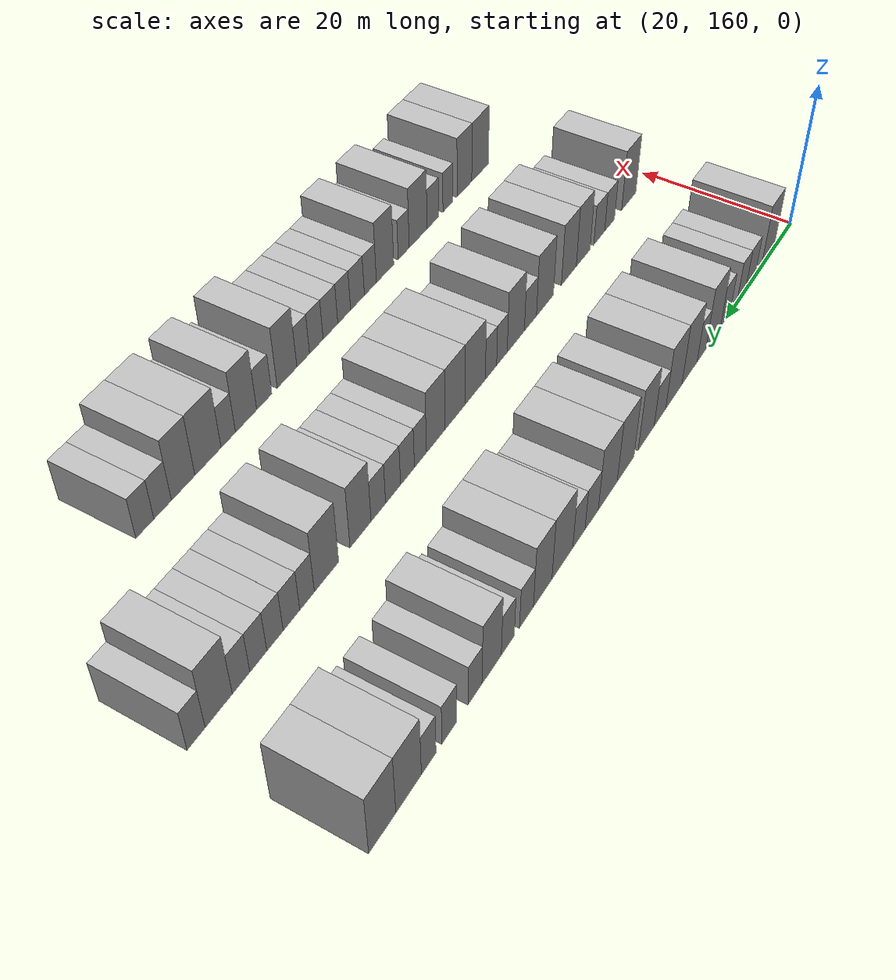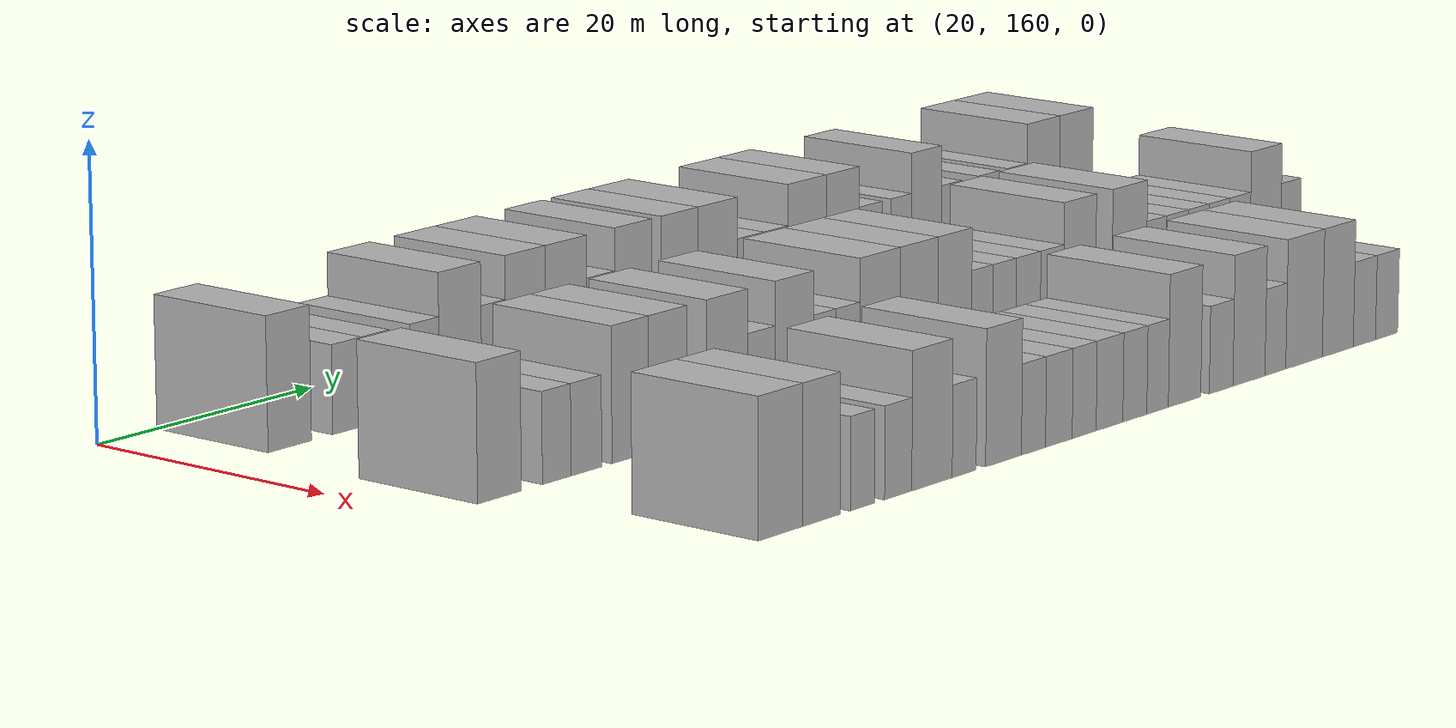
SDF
<sdf version="1.6">
 <world name="default">
  <model name="building_132">
   <static>1</static>
   <pose>25.0000 167.4016 0 0.000000 0.000000 0.000000</pose>
   <link name="link">
    <pose>0 0 4.50 0 0 0</pose>
    <collision name="collision"><geometry><box><size>10.0000 4.0361 9.0000</size></box></geometry></collision>
    <visual name="visual">
     <cast_shadows>0</cast_shadows>
     <geometry><box><size>10.0000 4.0361 9.0000</size></box></geometry>
     <material>
      <script>
       <uri>model://HANNAS_wall/materials/scripts</uri>
       <uri>model://HANNAS_wall/materials/textures</uri>
       <name>vrc/HANNAS_wall</name>
      </script>
     </material>
    </visual>
   </link>
  </model>
  <model name="building_133">
   <static>1</static>
   <pose>25.0000 172.8568 0 0.000000 0.000000 0.000000</pose>
   <link name="link">
    <pose>0 0 3.00 0 0 0</pose>
    <collision name="collision"><geometry><box><size>10.0000 2.8743 6.0000</size></box></geometry></collision>
    <visual name="visual">
     <cast_shadows>0</cast_shadows>
     <geometry><box><size>10.0000 2.8743 6.0000</size></box></geometry>
     <material>
      <script>
       <uri>model://HANNAS_wall/materials/scripts</uri>
       <uri>model://HANNAS_wall/materials/textures</uri>
       <name>vrc/HANNAS_wall</name>
      </script>
     </material>
    </visual>
   </link>
  </model>
  <model name="building_134">
   <static>1</static>
   <pose>25.0000 175.6253 0 0.000000 0.000000 0.000000</pose>
   <link name="link">
    <pose>0 0 3.00 0 0 0</pose>
    <collision name="collision"><geometry><box><size>10.0000 2.6626 6.0000</size></box></geometry></collision>
    <visual name="visual">
     <cast_shadows>0</cast_shadows>
     <geometry><box><size>10.0000 2.6626 6.0000</size></box></geometry>
     <material>
      <script>
       <uri>model://HANNAS_wall/materials/scripts</uri>
       <uri>model://HANNAS_wall/materials/textures</uri>
       <name>vrc/HANNAS_wall</name>
      </script>
     </material>
    </visual>
   </link>
  </model>
  <model name="building_135">
   <static>1</static>
   <pose>25.0000 180.3555 0 0.000000 0.000000 0.000000</pose>
   <link name="link">
    <pose>0 0 3.00 0 0 0</pose>
    <collision name="collision"><geometry><box><size>10.0000 2.7978 6.0000</size></box></geometry></collision>
    <visual name="visual">
     <cast_shadows>0</cast_shadows>
     <geometry><box><size>10.0000 2.7978 6.0000</size></box></geometry>
     <material>
      <script>
       <uri>model://HANNAS_wall/materials/scripts</uri>
       <uri>model://HANNAS_wall/materials/textures</uri>
       <name>vrc/HANNAS_wall</name>
      </script>
     </material>
    </visual>
   </link>
  </model>
  <model name="building_136">
   <static>1</static>
   <pose>25.0000 183.8550 0 0.000000 0.000000 0.000000</pose>
   <link name="link">
    <pose>0 0 4.50 0 0 0</pose>
    <collision name="collision"><geometry><box><size>10.0000 4.2011 9.0000</size></box></geometry></collision>
    <visual name="visual">
     <cast_shadows>0</cast_shadows>
     <geometry><box><size>10.0000 4.2011 9.0000</size></box></geometry>
     <material>
      <script>
       <uri>model://HANNAS_wall/materials/scripts</uri>
       <uri>model://HANNAS_wall/materials/textures</uri>
       <name>vrc/HANNAS_wall</name>
      </script>
     </material>
    </visual>
   </link>
  </model>
  <model name="building_137">
   <static>1</static>
   <pose>25.0000 187.1663 0 0.000000 0.000000 0.000000</pose>
   <link name="link">
    <pose>0 0 3.00 0 0 0</pose>
    <collision name="collision"><geometry><box><size>10.0000 2.4216 6.0000</size></box></geometry></collision>
    <visual name="visual">
     <cast_shadows>0</cast_shadows>
     <geometry><box><size>10.0000 2.4216 6.0000</size></box></geometry>
     <material>
      <script>
       <uri>model://HANNAS_wall/materials/scripts</uri>
       <uri>model://HANNAS_wall/materials/textures</uri>
       <name>vrc/HANNAS_wall</name>
      </script>
     </material>
    </visual>
   </link>
  </model>
  <model name="building_138">
   <static>1</static>
   <pose>25.0000 190.4388 0 0.000000 0.000000 0.000000</pose>
   <link name="link">
    <pose>0 0 4.50 0 0 0</pose>
    <collision name="collision"><geometry><box><size>10.0000 4.1233 9.0000</size></box></geometry></collision>
    <visual name="visual">
     <cast_shadows>0</cast_shadows>
     <geometry><box><size>10.0000 4.1233 9.0000</size></box></geometry>
     <material>
      <script>
       <uri>model://HANNAS_wall/materials/scripts</uri>
       <uri>model://HANNAS_wall/materials/textures</uri>
       <name>vrc/HANNAS_wall</name>
      </script>
     </material>
    </visual>
   </link>
  </model>
  <model name="building_139">
   <static>1</static>
   <pose>25.0000 194.6336 0 0.000000 0.000000 0.000000</pose>
   <link name="link">
    <pose>0 0 4.50 0 0 0</pose>
    <collision name="collision"><geometry><box><size>10.0000 4.2664 9.0000</size></box></geometry></collision>
    <visual name="visual">
     <cast_shadows>0</cast_shadows>
     <geometry><box><size>10.0000 4.2664 9.0000</size></box></geometry>
     <material>
      <script>
       <uri>model://HANNAS_wall/materials/scripts</uri>
       <uri>model://HANNAS_wall/materials/textures</uri>
       <name>vrc/HANNAS_wall</name>
      </script>
     </material>
    </visual>
   </link>
  </model>
  <model name="building_140">
   <static>1</static>
   <pose>25.0000 198.2343 0 0.000000 0.000000 0.000000</pose>
   <link name="link">
    <pose>0 0 3.00 0 0 0</pose>
    <collision name="collision"><geometry><box><size>10.0000 2.9349 6.0000</size></box></geometry></collision>
    <visual name="visual">
     <cast_shadows>0</cast_shadows>
     <geometry><box><size>10.0000 2.9349 6.0000</size></box></geometry>
     <material>
      <script>
       <uri>model://HANNAS_wall/materials/scripts</uri>
       <uri>model://HANNAS_wall/materials/textures</uri>
       <name>vrc/HANNAS_wall</name>
      </script>
     </material>
    </visual>
   </link>
  </model>
  <model name="building_141">
   <static>1</static>
   <pose>25.0000 201.6797 0 0.000000 0.000000 0.000000</pose>
   <link name="link">
    <pose>0 0 4.50 0 0 0</pose>
    <collision name="collision"><geometry><box><size>10.0000 3.9559 9.0000</size></box></geometry></collision>
    <visual name="visual">
     <cast_shadows>0</cast_shadows>
     <geometry><box><size>10.0000 3.9559 9.0000</size></box></geometry>
     <material>
      <script>
       <uri>model://HANNAS_wall/materials/scripts</uri>
       <uri>model://HANNAS_wall/materials/textures</uri>
       <name>vrc/HANNAS_wall</name>
      </script>
     </material>
    </visual>
   </link>
  </model>
  <model name="building_142">
   <static>1</static>
   <pose>25.0000 206.6580 0 0.000000 0.000000 0.000000</pose>
   <link name="link">
    <pose>0 0 4.50 0 0 0</pose>
    <collision name="collision"><geometry><box><size>10.0000 4.0008 9.0000</size></box></geometry></collision>
    <visual name="visual">
     <cast_shadows>0</cast_shadows>
     <geometry><box><size>10.0000 4.0008 9.0000</size></box></geometry>
     <material>
      <script>
       <uri>model://HANNAS_wall/materials/scripts</uri>
       <uri>model://HANNAS_wall/materials/textures</uri>
       <name>vrc/HANNAS_wall</name>
      </script>
     </material>
    </visual>
   </link>
  </model>
  <model name="building_143">
   <static>1</static>
   <pose>25.0000 210.8359 0 0.000000 0.000000 0.000000</pose>
   <link name="link">
    <pose>0 0 4.50 0 0 0</pose>
    <collision name="collision"><geometry><box><size>10.0000 4.3551 9.0000</size></box></geometry></collision>
    <visual name="visual">
     <cast_shadows>0</cast_shadows>
     <geometry><box><size>10.0000 4.3551 9.0000</size></box></geometry>
     <material>
      <script>
       <uri>model://HANNAS_wall/materials/scripts</uri>
       <uri>model://HANNAS_wall/materials/textures</uri>
       <name>vrc/HANNAS_wall</name>
      </script>
     </material>
    </visual>
   </link>
  </model>
  <model name="building_144">
   <static>1</static>
   <pose>25.0000 214.5056 0 0.000000 0.000000 0.000000</pose>
   <link name="link">
    <pose>0 0 3.00 0 0 0</pose>
    <collision name="collision"><geometry><box><size>10.0000 2.9843 6.0000</size></box></geometry></collision>
    <visual name="visual">
     <cast_shadows>0</cast_shadows>
     <geometry><box><size>10.0000 2.9843 6.0000</size></box></geometry>
     <material>
      <script>
       <uri>model://HANNAS_wall/materials/scripts</uri>
       <uri>model://HANNAS_wall/materials/textures</uri>
       <name>vrc/HANNAS_wall</name>
      </script>
     </material>
    </visual>
   </link>
  </model>
  <model name="building_145">
   <static>1</static>
   <pose>25.0000 217.3290 0 0.000000 0.000000 0.000000</pose>
   <link name="link">
    <pose>0 0 3.00 0 0 0</pose>
    <collision name="collision"><geometry><box><size>10.0000 2.6625 6.0000</size></box></geometry></collision>
    <visual name="visual">
     <cast_shadows>0</cast_shadows>
     <geometry><box><size>10.0000 2.6625 6.0000</size></box></geometry>
     <material>
      <script>
       <uri>model://HANNAS_wall/materials/scripts</uri>
       <uri>model://HANNAS_wall/materials/textures</uri>
       <name>vrc/HANNAS_wall</name>
      </script>
     </material>
    </visual>
   </link>
  </model>
  <model name="building_146">
   <static>1</static>
   <pose>25.0000 220.8657 0 0.000000 0.000000 0.000000</pose>
   <link name="link">
    <pose>0 0 4.50 0 0 0</pose>
    <collision name="collision"><geometry><box><size>10.0000 4.4109 9.0000</size></box></geometry></collision>
    <visual name="visual">
     <cast_shadows>0</cast_shadows>
     <geometry><box><size>10.0000 4.4109 9.0000</size></box></geometry>
     <material>
      <script>
       <uri>model://HANNAS_wall/materials/scripts</uri>
       <uri>model://HANNAS_wall/materials/textures</uri>
       <name>vrc/HANNAS_wall</name>
      </script>
     </material>
    </visual>
   </link>
  </model>
  <model name="building_147">
   <static>1</static>
   <pose>25.0000 224.9653 0 0.000000 0.000000 0.000000</pose>
   <link name="link">
    <pose>0 0 4.50 0 0 0</pose>
    <collision name="collision"><geometry><box><size>10.0000 3.7883 9.0000</size></box></geometry></collision>
    <visual name="visual">
     <cast_shadows>0</cast_shadows>
     <geometry><box><size>10.0000 3.7883 9.0000</size></box></geometry>
     <material>
      <script>
       <uri>model://HANNAS_wall/materials/scripts</uri>
       <uri>model://HANNAS_wall/materials/textures</uri>
       <name>vrc/HANNAS_wall</name>
      </script>
     </material>
    </visual>
   </link>
  </model>
  <model name="building_148">
   <static>1</static>
   <pose>25.0000 228.2451 0 0.000000 0.000000 0.000000</pose>
   <link name="link">
    <pose>0 0 3.00 0 0 0</pose>
    <collision name="collision"><geometry><box><size>10.0000 2.7714 6.0000</size></box></geometry></collision>
    <visual name="visual">
     <cast_shadows>0</cast_shadows>
     <geometry><box><size>10.0000 2.7714 6.0000</size></box></geometry>
     <material>
      <script>
       <uri>model://HANNAS_wall/materials/scripts</uri>
       <uri>model://HANNAS_wall/materials/textures</uri>
       <name>vrc/HANNAS_wall</name>
      </script>
     </material>
    </visual>
   </link>
  </model>
  <model name="building_149">
   <static>1</static>
   <pose>25.0000 231.8796 0 0.000000 0.000000 0.000000</pose>
   <link name="link">
    <pose>0 0 3.00 0 0 0</pose>
    <collision name="collision"><geometry><box><size>10.0000 2.4976 6.0000</size></box></geometry></collision>
    <visual name="visual">
     <cast_shadows>0</cast_shadows>
     <geometry><box><size>10.0000 2.4976 6.0000</size></box></geometry>
     <material>
      <script>
       <uri>model://HANNAS_wall/materials/scripts</uri>
       <uri>model://HANNAS_wall/materials/textures</uri>
       <name>vrc/HANNAS_wall</name>
      </script>
     </material>
    </visual>
   </link>
  </model>
  <model name="building_150">
   <static>1</static>
   <pose>25.0000 234.9366 0 0.000000 0.000000 0.000000</pose>
   <link name="link">
    <pose>0 0 4.50 0 0 0</pose>
    <collision name="collision"><geometry><box><size>10.0000 3.6164 9.0000</size></box></geometry></collision>
    <visual name="visual">
     <cast_shadows>0</cast_shadows>
     <geometry><box><size>10.0000 3.6164 9.0000</size></box></geometry>
     <material>
      <script>
       <uri>model://HANNAS_wall/materials/scripts</uri>
       <uri>model://HANNAS_wall/materials/textures</uri>
       <name>vrc/HANNAS_wall</name>
      </script>
     </material>
    </visual>
   </link>
  </model>
  <model name="building_151">
   <static>1</static>
   <pose>25.0000 237.9930 0 0.000000 0.000000 0.000000</pose>
   <link name="link">
    <pose>0 0 3.00 0 0 0</pose>
    <collision name="collision"><geometry><box><size>10.0000 2.4963 6.0000</size></box></geometry></collision>
    <visual name="visual">
     <cast_shadows>0</cast_shadows>
     <geometry><box><size>10.0000 2.4963 6.0000</size></box></geometry>
     <material>
      <script>
       <uri>model://HANNAS_wall/materials/scripts</uri>
       <uri>model://HANNAS_wall/materials/textures</uri>
       <name>vrc/HANNAS_wall</name>
      </script>
     </material>
    </visual>
   </link>
  </model>
  <model name="building_152">
   <static>1</static>
   <pose>25.0000 242.5551 0 0.000000 0.000000 0.000000</pose>
   <link name="link">
    <pose>0 0 3.00 0 0 0</pose>
    <collision name="collision"><geometry><box><size>10.0000 2.6278 6.0000</size></box></geometry></collision>
    <visual name="visual">
     <cast_shadows>0</cast_shadows>
     <geometry><box><size>10.0000 2.6278 6.0000</size></box></geometry>
     <material>
      <script>
       <uri>model://HANNAS_wall/materials/scripts</uri>
       <uri>model://HANNAS_wall/materials/textures</uri>
       <name>vrc/HANNAS_wall</name>
      </script>
     </material>
    </visual>
   </link>
  </model>
  <model name="building_153">
   <static>1</static>
   <pose>25.0000 246.0981 0 0.000000 0.000000 0.000000</pose>
   <link name="link">
    <pose>0 0 3.00 0 0 0</pose>
    <collision name="collision"><geometry><box><size>10.0000 2.4583 6.0000</size></box></geometry></collision>
    <visual name="visual">
     <cast_shadows>0</cast_shadows>
     <geometry><box><size>10.0000 2.4583 6.0000</size></box></geometry>
     <material>
      <script>
       <uri>model://HANNAS_wall/materials/scripts</uri>
       <uri>model://HANNAS_wall/materials/textures</uri>
       <name>vrc/HANNAS_wall</name>
      </script>
     </material>
    </visual>
   </link>
  </model>
  <model name="building_154">
   <static>1</static>
   <pose>25.0000 249.4092 0 0.000000 0.000000 0.000000</pose>
   <link name="link">
    <pose>0 0 4.50 0 0 0</pose>
    <collision name="collision"><geometry><box><size>10.0000 4.1639 9.0000</size></box></geometry></collision>
    <visual name="visual">
     <cast_shadows>0</cast_shadows>
     <geometry><box><size>10.0000 4.1639 9.0000</size></box></geometry>
     <material>
      <script>
       <uri>model://HANNAS_wall/materials/scripts</uri>
       <uri>model://HANNAS_wall/materials/textures</uri>
       <name>vrc/HANNAS_wall</name>
      </script>
     </material>
    </visual>
   </link>
  </model>
  <model name="building_155">
   <static>1</static>
   <pose>25.0000 253.6207 0 0.000000 0.000000 0.000000</pose>
   <link name="link">
    <pose>0 0 4.50 0 0 0</pose>
    <collision name="collision"><geometry><box><size>10.0000 4.2589 9.0000</size></box></geometry></collision>
    <visual name="visual">
     <cast_shadows>0</cast_shadows>
     <geometry><box><size>10.0000 4.2589 9.0000</size></box></geometry>
     <material>
      <script>
       <uri>model://HANNAS_wall/materials/scripts</uri>
       <uri>model://HANNAS_wall/materials/textures</uri>
       <name>vrc/HANNAS_wall</name>
      </script>
     </material>
    </visual>
   </link>
  </model>
  <model name="building_297">
   <static>1</static>
   <pose>44.0000 166.2717 0 0.000000 0.000000 0.000000</pose>
   <link name="link">
    <pose>0 0 4.50 0 0 0</pose>
    <collision name="collision"><geometry><box><size>10.0000 4.1031 9.0000</size></box></geometry></collision>
    <visual name="visual">
     <cast_shadows>0</cast_shadows>
     <geometry><box><size>10.0000 4.1031 9.0000</size></box></geometry>
     <material>
      <script>
       <uri>model://HANNAS_wall/materials/scripts</uri>
       <uri>model://HANNAS_wall/materials/textures</uri>
       <name>vrc/HANNAS_wall</name>
      </script>
     </material>
    </visual>
   </link>
  </model>
  <model name="building_298">
   <static>1</static>
   <pose>44.0000 171.6973 0 0.000000 0.000000 0.000000</pose>
   <link name="link">
    <pose>0 0 3.00 0 0 0</pose>
    <collision name="collision"><geometry><box><size>10.0000 2.7482 6.0000</size></box></geometry></collision>
    <visual name="visual">
     <cast_shadows>0</cast_shadows>
     <geometry><box><size>10.0000 2.7482 6.0000</size></box></geometry>
     <material>
      <script>
       <uri>model://HANNAS_wall/materials/scripts</uri>
       <uri>model://HANNAS_wall/materials/textures</uri>
       <name>vrc/HANNAS_wall</name>
      </script>
     </material>
    </visual>
   </link>
  </model>
  <model name="building_299">
   <static>1</static>
   <pose>44.0000 174.5590 0 0.000000 0.000000 0.000000</pose>
   <link name="link">
    <pose>0 0 3.00 0 0 0</pose>
    <collision name="collision"><geometry><box><size>10.0000 2.9753 6.0000</size></box></geometry></collision>
    <visual name="visual">
     <cast_shadows>0</cast_shadows>
     <geometry><box><size>10.0000 2.9753 6.0000</size></box></geometry>
     <material>
      <script>
       <uri>model://HANNAS_wall/materials/scripts</uri>
       <uri>model://HANNAS_wall/materials/textures</uri>
       <name>vrc/HANNAS_wall</name>
      </script>
     </material>
    </visual>
   </link>
  </model>
  <model name="building_300">
   <static>1</static>
   <pose>44.0000 178.8751 0 0.000000 0.000000 0.000000</pose>
   <link name="link">
    <pose>0 0 4.50 0 0 0</pose>
    <collision name="collision"><geometry><box><size>10.0000 3.6570 9.0000</size></box></geometry></collision>
    <visual name="visual">
     <cast_shadows>0</cast_shadows>
     <geometry><box><size>10.0000 3.6570 9.0000</size></box></geometry>
     <material>
      <script>
       <uri>model://HANNAS_wall/materials/scripts</uri>
       <uri>model://HANNAS_wall/materials/textures</uri>
       <name>vrc/HANNAS_wall</name>
      </script>
     </material>
    </visual>
   </link>
  </model>
  <model name="building_301">
   <static>1</static>
   <pose>44.0000 182.6190 0 0.000000 0.000000 0.000000</pose>
   <link name="link">
    <pose>0 0 4.50 0 0 0</pose>
    <collision name="collision"><geometry><box><size>10.0000 3.8307 9.0000</size></box></geometry></collision>
    <visual name="visual">
     <cast_shadows>0</cast_shadows>
     <geometry><box><size>10.0000 3.8307 9.0000</size></box></geometry>
     <material>
      <script>
       <uri>model://HANNAS_wall/materials/scripts</uri>
       <uri>model://HANNAS_wall/materials/textures</uri>
       <name>vrc/HANNAS_wall</name>
      </script>
     </material>
    </visual>
   </link>
  </model>
  <model name="building_302">
   <static>1</static>
   <pose>44.0000 188.6394 0 0.000000 0.000000 0.000000</pose>
   <link name="link">
    <pose>0 0 4.50 0 0 0</pose>
    <collision name="collision"><geometry><box><size>10.0000 4.2102 9.0000</size></box></geometry></collision>
    <visual name="visual">
     <cast_shadows>0</cast_shadows>
     <geometry><box><size>10.0000 4.2102 9.0000</size></box></geometry>
     <material>
      <script>
       <uri>model://HANNAS_wall/materials/scripts</uri>
       <uri>model://HANNAS_wall/materials/textures</uri>
       <name>vrc/HANNAS_wall</name>
      </script>
     </material>
    </visual>
   </link>
  </model>
  <model name="building_303">
   <static>1</static>
   <pose>44.0000 192.1918 0 0.000000 0.000000 0.000000</pose>
   <link name="link">
    <pose>0 0 3.00 0 0 0</pose>
    <collision name="collision"><geometry><box><size>10.0000 2.8946 6.0000</size></box></geometry></collision>
    <visual name="visual">
     <cast_shadows>0</cast_shadows>
     <geometry><box><size>10.0000 2.8946 6.0000</size></box></geometry>
     <material>
      <script>
       <uri>model://HANNAS_wall/materials/scripts</uri>
       <uri>model://HANNAS_wall/materials/textures</uri>
       <name>vrc/HANNAS_wall</name>
      </script>
     </material>
    </visual>
   </link>
  </model>
  <model name="building_304">
   <static>1</static>
   <pose>44.0000 195.6541 0 0.000000 0.000000 0.000000</pose>
   <link name="link">
    <pose>0 0 4.50 0 0 0</pose>
    <collision name="collision"><geometry><box><size>10.0000 4.0300 9.0000</size></box></geometry></collision>
    <visual name="visual">
     <cast_shadows>0</cast_shadows>
     <geometry><box><size>10.0000 4.0300 9.0000</size></box></geometry>
     <material>
      <script>
       <uri>model://HANNAS_wall/materials/scripts</uri>
       <uri>model://HANNAS_wall/materials/textures</uri>
       <name>vrc/HANNAS_wall</name>
      </script>
     </material>
    </visual>
   </link>
  </model>
  <model name="building_305">
   <static>1</static>
   <pose>44.0000 198.8816 0 0.000000 0.000000 0.000000</pose>
   <link name="link">
    <pose>0 0 3.00 0 0 0</pose>
    <collision name="collision"><geometry><box><size>10.0000 2.4249 6.0000</size></box></geometry></collision>
    <visual name="visual">
     <cast_shadows>0</cast_shadows>
     <geometry><box><size>10.0000 2.4249 6.0000</size></box></geometry>
     <material>
      <script>
       <uri>model://HANNAS_wall/materials/scripts</uri>
       <uri>model://HANNAS_wall/materials/textures</uri>
       <name>vrc/HANNAS_wall</name>
      </script>
     </material>
    </visual>
   </link>
  </model>
  <model name="building_306">
   <static>1</static>
   <pose>44.0000 201.3626 0 0.000000 0.000000 0.000000</pose>
   <link name="link">
    <pose>0 0 3.00 0 0 0</pose>
    <collision name="collision"><geometry><box><size>10.0000 2.5373 6.0000</size></box></geometry></collision>
    <visual name="visual">
     <cast_shadows>0</cast_shadows>
     <geometry><box><size>10.0000 2.5373 6.0000</size></box></geometry>
     <material>
      <script>
       <uri>model://HANNAS_wall/materials/scripts</uri>
       <uri>model://HANNAS_wall/materials/textures</uri>
       <name>vrc/HANNAS_wall</name>
      </script>
     </material>
    </visual>
   </link>
  </model>
  <model name="building_307">
   <static>1</static>
   <pose>44.0000 204.8382 0 0.000000 0.000000 0.000000</pose>
   <link name="link">
    <pose>0 0 4.50 0 0 0</pose>
    <collision name="collision"><geometry><box><size>10.0000 4.4139 9.0000</size></box></geometry></collision>
    <visual name="visual">
     <cast_shadows>0</cast_shadows>
     <geometry><box><size>10.0000 4.4139 9.0000</size></box></geometry>
     <material>
      <script>
       <uri>model://HANNAS_wall/materials/scripts</uri>
       <uri>model://HANNAS_wall/materials/textures</uri>
       <name>vrc/HANNAS_wall</name>
      </script>
     </material>
    </visual>
   </link>
  </model>
  <model name="building_308">
   <static>1</static>
   <pose>44.0000 209.1703 0 0.000000 0.000000 0.000000</pose>
   <link name="link">
    <pose>0 0 4.50 0 0 0</pose>
    <collision name="collision"><geometry><box><size>10.0000 4.2503 9.0000</size></box></geometry></collision>
    <visual name="visual">
     <cast_shadows>0</cast_shadows>
     <geometry><box><size>10.0000 4.2503 9.0000</size></box></geometry>
     <material>
      <script>
       <uri>model://HANNAS_wall/materials/scripts</uri>
       <uri>model://HANNAS_wall/materials/textures</uri>
       <name>vrc/HANNAS_wall</name>
      </script>
     </material>
    </visual>
   </link>
  </model>
  <model name="building_309">
   <static>1</static>
   <pose>44.0000 213.2026 0 0.000000 0.000000 0.000000</pose>
   <link name="link">
    <pose>0 0 4.50 0 0 0</pose>
    <collision name="collision"><geometry><box><size>10.0000 3.8143 9.0000</size></box></geometry></collision>
    <visual name="visual">
     <cast_shadows>0</cast_shadows>
     <geometry><box><size>10.0000 3.8143 9.0000</size></box></geometry>
     <material>
      <script>
       <uri>model://HANNAS_wall/materials/scripts</uri>
       <uri>model://HANNAS_wall/materials/textures</uri>
       <name>vrc/HANNAS_wall</name>
      </script>
     </material>
    </visual>
   </link>
  </model>
  <model name="building_310">
   <static>1</static>
   <pose>44.0000 216.3198 0 0.000000 0.000000 0.000000</pose>
   <link name="link">
    <pose>0 0 3.00 0 0 0</pose>
    <collision name="collision"><geometry><box><size>10.0000 2.4201 6.0000</size></box></geometry></collision>
    <visual name="visual">
     <cast_shadows>0</cast_shadows>
     <geometry><box><size>10.0000 2.4201 6.0000</size></box></geometry>
     <material>
      <script>
       <uri>model://HANNAS_wall/materials/scripts</uri>
       <uri>model://HANNAS_wall/materials/textures</uri>
       <name>vrc/HANNAS_wall</name>
      </script>
     </material>
    </visual>
   </link>
  </model>
  <model name="building_311">
   <static>1</static>
   <pose>44.0000 218.8859 0 0.000000 0.000000 0.000000</pose>
   <link name="link">
    <pose>0 0 3.00 0 0 0</pose>
    <collision name="collision"><geometry><box><size>10.0000 2.7121 6.0000</size></box></geometry></collision>
    <visual name="visual">
     <cast_shadows>0</cast_shadows>
     <geometry><box><size>10.0000 2.7121 6.0000</size></box></geometry>
     <material>
      <script>
       <uri>model://HANNAS_wall/materials/scripts</uri>
       <uri>model://HANNAS_wall/materials/textures</uri>
       <name>vrc/HANNAS_wall</name>
      </script>
     </material>
    </visual>
   </link>
  </model>
  <model name="building_312">
   <static>1</static>
   <pose>44.0000 221.6745 0 0.000000 0.000000 0.000000</pose>
   <link name="link">
    <pose>0 0 3.00 0 0 0</pose>
    <collision name="collision"><geometry><box><size>10.0000 2.8652 6.0000</size></box></geometry></collision>
    <visual name="visual">
     <cast_shadows>0</cast_shadows>
     <geometry><box><size>10.0000 2.8652 6.0000</size></box></geometry>
     <material>
      <script>
       <uri>model://HANNAS_wall/materials/scripts</uri>
       <uri>model://HANNAS_wall/materials/textures</uri>
       <name>vrc/HANNAS_wall</name>
      </script>
     </material>
    </visual>
   </link>
  </model>
  <model name="building_313">
   <static>1</static>
   <pose>44.0000 224.4675 0 0.000000 0.000000 0.000000</pose>
   <link name="link">
    <pose>0 0 3.00 0 0 0</pose>
    <collision name="collision"><geometry><box><size>10.0000 2.7208 6.0000</size></box></geometry></collision>
    <visual name="visual">
     <cast_shadows>0</cast_shadows>
     <geometry><box><size>10.0000 2.7208 6.0000</size></box></geometry>
     <material>
      <script>
       <uri>model://HANNAS_wall/materials/scripts</uri>
       <uri>model://HANNAS_wall/materials/textures</uri>
       <name>vrc/HANNAS_wall</name>
      </script>
     </material>
    </visual>
   </link>
  </model>
  <model name="building_314">
   <static>1</static>
   <pose>44.0000 227.7508 0 0.000000 0.000000 0.000000</pose>
   <link name="link">
    <pose>0 0 4.50 0 0 0</pose>
    <collision name="collision"><geometry><box><size>10.0000 3.8458 9.0000</size></box></geometry></collision>
    <visual name="visual">
     <cast_shadows>0</cast_shadows>
     <geometry><box><size>10.0000 3.8458 9.0000</size></box></geometry>
     <material>
      <script>
       <uri>model://HANNAS_wall/materials/scripts</uri>
       <uri>model://HANNAS_wall/materials/textures</uri>
       <name>vrc/HANNAS_wall</name>
      </script>
     </material>
    </visual>
   </link>
  </model>
  <model name="building_315">
   <static>1</static>
   <pose>44.0000 233.7811 0 0.000000 0.000000 0.000000</pose>
   <link name="link">
    <pose>0 0 4.50 0 0 0</pose>
    <collision name="collision"><geometry><box><size>10.0000 4.2148 9.0000</size></box></geometry></collision>
    <visual name="visual">
     <cast_shadows>0</cast_shadows>
     <geometry><box><size>10.0000 4.2148 9.0000</size></box></geometry>
     <material>
      <script>
       <uri>model://HANNAS_wall/materials/scripts</uri>
       <uri>model://HANNAS_wall/materials/textures</uri>
       <name>vrc/HANNAS_wall</name>
      </script>
     </material>
    </visual>
   </link>
  </model>
  <model name="building_316">
   <static>1</static>
   <pose>44.0000 237.1164 0 0.000000 0.000000 0.000000</pose>
   <link name="link">
    <pose>0 0 3.00 0 0 0</pose>
    <collision name="collision"><geometry><box><size>10.0000 2.4559 6.0000</size></box></geometry></collision>
    <visual name="visual">
     <cast_shadows>0</cast_shadows>
     <geometry><box><size>10.0000 2.4559 6.0000</size></box></geometry>
     <material>
      <script>
       <uri>model://HANNAS_wall/materials/scripts</uri>
       <uri>model://HANNAS_wall/materials/textures</uri>
       <name>vrc/HANNAS_wall</name>
      </script>
     </material>
    </visual>
   </link>
  </model>
  <model name="building_317">
   <static>1</static>
   <pose>44.0000 239.7069 0 0.000000 0.000000 0.000000</pose>
   <link name="link">
    <pose>0 0 3.00 0 0 0</pose>
    <collision name="collision"><geometry><box><size>10.0000 2.7252 6.0000</size></box></geometry></collision>
    <visual name="visual">
     <cast_shadows>0</cast_shadows>
     <geometry><box><size>10.0000 2.7252 6.0000</size></box></geometry>
     <material>
      <script>
       <uri>model://HANNAS_wall/materials/scripts</uri>
       <uri>model://HANNAS_wall/materials/textures</uri>
       <name>vrc/HANNAS_wall</name>
      </script>
     </material>
    </visual>
   </link>
  </model>
  <model name="building_318">
   <static>1</static>
   <pose>44.0000 242.3762 0 0.000000 0.000000 0.000000</pose>
   <link name="link">
    <pose>0 0 3.00 0 0 0</pose>
    <collision name="collision"><geometry><box><size>10.0000 2.6133 6.0000</size></box></geometry></collision>
    <visual name="visual">
     <cast_shadows>0</cast_shadows>
     <geometry><box><size>10.0000 2.6133 6.0000</size></box></geometry>
     <material>
      <script>
       <uri>model://HANNAS_wall/materials/scripts</uri>
       <uri>model://HANNAS_wall/materials/textures</uri>
       <name>vrc/HANNAS_wall</name>
      </script>
     </material>
    </visual>
   </link>
  </model>
  <model name="building_319">
   <static>1</static>
   <pose>44.0000 245.0153 0 0.000000 0.000000 0.000000</pose>
   <link name="link">
    <pose>0 0 3.00 0 0 0</pose>
    <collision name="collision"><geometry><box><size>10.0000 2.6649 6.0000</size></box></geometry></collision>
    <visual name="visual">
     <cast_shadows>0</cast_shadows>
     <geometry><box><size>10.0000 2.6649 6.0000</size></box></geometry>
     <material>
      <script>
       <uri>model://HANNAS_wall/materials/scripts</uri>
       <uri>model://HANNAS_wall/materials/textures</uri>
       <name>vrc/HANNAS_wall</name>
      </script>
     </material>
    </visual>
   </link>
  </model>
  <model name="building_320">
   <static>1</static>
   <pose>44.0000 247.6917 0 0.000000 0.000000 0.000000</pose>
   <link name="link">
    <pose>0 0 3.00 0 0 0</pose>
    <collision name="collision"><geometry><box><size>10.0000 2.6880 6.0000</size></box></geometry></collision>
    <visual name="visual">
     <cast_shadows>0</cast_shadows>
     <geometry><box><size>10.0000 2.6880 6.0000</size></box></geometry>
     <material>
      <script>
       <uri>model://HANNAS_wall/materials/scripts</uri>
       <uri>model://HANNAS_wall/materials/textures</uri>
       <name>vrc/HANNAS_wall</name>
      </script>
     </material>
    </visual>
   </link>
  </model>
  <model name="building_321">
   <static>1</static>
   <pose>44.0000 251.0475 0 0.000000 0.000000 0.000000</pose>
   <link name="link">
    <pose>0 0 4.50 0 0 0</pose>
    <collision name="collision"><geometry><box><size>10.0000 4.0236 9.0000</size></box></geometry></collision>
    <visual name="visual">
     <cast_shadows>0</cast_shadows>
     <geometry><box><size>10.0000 4.0236 9.0000</size></box></geometry>
     <material>
      <script>
       <uri>model://HANNAS_wall/materials/scripts</uri>
       <uri>model://HANNAS_wall/materials/textures</uri>
       <name>vrc/HANNAS_wall</name>
      </script>
     </material>
    </visual>
   </link>
  </model>
  <model name="building_322">
   <static>1</static>
   <pose>44.0000 254.3635 0 0.000000 0.000000 0.000000</pose>
   <link name="link">
    <pose>0 0 3.00 0 0 0</pose>
    <collision name="collision"><geometry><box><size>10.0000 2.6082 6.0000</size></box></geometry></collision>
    <visual name="visual">
     <cast_shadows>0</cast_shadows>
     <geometry><box><size>10.0000 2.6082 6.0000</size></box></geometry>
     <material>
      <script>
       <uri>model://HANNAS_wall/materials/scripts</uri>
       <uri>model://HANNAS_wall/materials/textures</uri>
       <name>vrc/HANNAS_wall</name>
      </script>
     </material>
    </visual>
   </link>
  </model>
  <model name="building_481">
   <static>1</static>
   <pose>63.0000 170.5049 0 0.000000 0.000000 0.000000</pose>
   <link name="link">
    <pose>0 0 4.50 0 0 0</pose>
    <collision name="collision"><geometry><box><size>10.0000 4.3041 9.0000</size></box></geometry></collision>
    <visual name="visual">
     <cast_shadows>0</cast_shadows>
     <geometry><box><size>10.0000 4.3041 9.0000</size></box></geometry>
     <material>
      <script>
       <uri>model://HANNAS_wall/materials/scripts</uri>
       <uri>model://HANNAS_wall/materials/textures</uri>
       <name>vrc/HANNAS_wall</name>
      </script>
     </material>
    </visual>
   </link>
  </model>
  <model name="building_482">
   <static>1</static>
   <pose>63.0000 174.5068 0 0.000000 0.000000 0.000000</pose>
   <link name="link">
    <pose>0 0 4.50 0 0 0</pose>
    <collision name="collision"><geometry><box><size>10.0000 3.6996 9.0000</size></box></geometry></collision>
    <visual name="visual">
     <cast_shadows>0</cast_shadows>
     <geometry><box><size>10.0000 3.6996 9.0000</size></box></geometry>
     <material>
      <script>
       <uri>model://HANNAS_wall/materials/scripts</uri>
       <uri>model://HANNAS_wall/materials/textures</uri>
       <name>vrc/HANNAS_wall</name>
      </script>
     </material>
    </visual>
   </link>
  </model>
  <model name="building_483">
   <static>1</static>
   <pose>63.0000 178.5819 0 0.000000 0.000000 0.000000</pose>
   <link name="link">
    <pose>0 0 3.00 0 0 0</pose>
    <collision name="collision"><geometry><box><size>10.0000 2.4505 6.0000</size></box></geometry></collision>
    <visual name="visual">
     <cast_shadows>0</cast_shadows>
     <geometry><box><size>10.0000 2.4505 6.0000</size></box></geometry>
     <material>
      <script>
       <uri>model://HANNAS_wall/materials/scripts</uri>
       <uri>model://HANNAS_wall/materials/textures</uri>
       <name>vrc/HANNAS_wall</name>
      </script>
     </material>
    </visual>
   </link>
  </model>
  <model name="building_484">
   <static>1</static>
   <pose>63.0000 182.1968 0 0.000000 0.000000 0.000000</pose>
   <link name="link">
    <pose>0 0 3.00 0 0 0</pose>
    <collision name="collision"><geometry><box><size>10.0000 2.7794 6.0000</size></box></geometry></collision>
    <visual name="visual">
     <cast_shadows>0</cast_shadows>
     <geometry><box><size>10.0000 2.7794 6.0000</size></box></geometry>
     <material>
      <script>
       <uri>model://HANNAS_wall/materials/scripts</uri>
       <uri>model://HANNAS_wall/materials/textures</uri>
       <name>vrc/HANNAS_wall</name>
      </script>
     </material>
    </visual>
   </link>
  </model>
  <model name="building_485">
   <static>1</static>
   <pose>63.0000 185.6788 0 0.000000 0.000000 0.000000</pose>
   <link name="link">
    <pose>0 0 4.50 0 0 0</pose>
    <collision name="collision"><geometry><box><size>10.0000 4.1846 9.0000</size></box></geometry></collision>
    <visual name="visual">
     <cast_shadows>0</cast_shadows>
     <geometry><box><size>10.0000 4.1846 9.0000</size></box></geometry>
     <material>
      <script>
       <uri>model://HANNAS_wall/materials/scripts</uri>
       <uri>model://HANNAS_wall/materials/textures</uri>
       <name>vrc/HANNAS_wall</name>
      </script>
     </material>
    </visual>
   </link>
  </model>
  <model name="building_486">
   <static>1</static>
   <pose>63.0000 189.0292 0 0.000000 0.000000 0.000000</pose>
   <link name="link">
    <pose>0 0 3.00 0 0 0</pose>
    <collision name="collision"><geometry><box><size>10.0000 2.5161 6.0000</size></box></geometry></collision>
    <visual name="visual">
     <cast_shadows>0</cast_shadows>
     <geometry><box><size>10.0000 2.5161 6.0000</size></box></geometry>
     <material>
      <script>
       <uri>model://HANNAS_wall/materials/scripts</uri>
       <uri>model://HANNAS_wall/materials/textures</uri>
       <name>vrc/HANNAS_wall</name>
      </script>
     </material>
    </visual>
   </link>
  </model>
  <model name="building_487">
   <static>1</static>
   <pose>63.0000 193.2032 0 0.000000 0.000000 0.000000</pose>
   <link name="link">
    <pose>0 0 4.50 0 0 0</pose>
    <collision name="collision"><geometry><box><size>10.0000 3.8319 9.0000</size></box></geometry></collision>
    <visual name="visual">
     <cast_shadows>0</cast_shadows>
     <geometry><box><size>10.0000 3.8319 9.0000</size></box></geometry>
     <material>
      <script>
       <uri>model://HANNAS_wall/materials/scripts</uri>
       <uri>model://HANNAS_wall/materials/textures</uri>
       <name>vrc/HANNAS_wall</name>
      </script>
     </material>
    </visual>
   </link>
  </model>
  <model name="building_488">
   <static>1</static>
   <pose>63.0000 196.4225 0 0.000000 0.000000 0.000000</pose>
   <link name="link">
    <pose>0 0 3.00 0 0 0</pose>
    <collision name="collision"><geometry><box><size>10.0000 2.6067 6.0000</size></box></geometry></collision>
    <visual name="visual">
     <cast_shadows>0</cast_shadows>
     <geometry><box><size>10.0000 2.6067 6.0000</size></box></geometry>
     <material>
      <script>
       <uri>model://HANNAS_wall/materials/scripts</uri>
       <uri>model://HANNAS_wall/materials/textures</uri>
       <name>vrc/HANNAS_wall</name>
      </script>
     </material>
    </visual>
   </link>
  </model>
  <model name="building_489">
   <static>1</static>
   <pose>63.0000 199.1885 0 0.000000 0.000000 0.000000</pose>
   <link name="link">
    <pose>0 0 3.00 0 0 0</pose>
    <collision name="collision"><geometry><box><size>10.0000 2.9254 6.0000</size></box></geometry></collision>
    <visual name="visual">
     <cast_shadows>0</cast_shadows>
     <geometry><box><size>10.0000 2.9254 6.0000</size></box></geometry>
     <material>
      <script>
       <uri>model://HANNAS_wall/materials/scripts</uri>
       <uri>model://HANNAS_wall/materials/textures</uri>
       <name>vrc/HANNAS_wall</name>
      </script>
     </material>
    </visual>
   </link>
  </model>
  <model name="building_490">
   <static>1</static>
   <pose>63.0000 201.9805 0 0.000000 0.000000 0.000000</pose>
   <link name="link">
    <pose>0 0 3.00 0 0 0</pose>
    <collision name="collision"><geometry><box><size>10.0000 2.6586 6.0000</size></box></geometry></collision>
    <visual name="visual">
     <cast_shadows>0</cast_shadows>
     <geometry><box><size>10.0000 2.6586 6.0000</size></box></geometry>
     <material>
      <script>
       <uri>model://HANNAS_wall/materials/scripts</uri>
       <uri>model://HANNAS_wall/materials/textures</uri>
       <name>vrc/HANNAS_wall</name>
      </script>
     </material>
    </visual>
   </link>
  </model>
  <model name="building_491">
   <static>1</static>
   <pose>63.0000 204.8020 0 0.000000 0.000000 0.000000</pose>
   <link name="link">
    <pose>0 0 3.00 0 0 0</pose>
    <collision name="collision"><geometry><box><size>10.0000 2.9845 6.0000</size></box></geometry></collision>
    <visual name="visual">
     <cast_shadows>0</cast_shadows>
     <geometry><box><size>10.0000 2.9845 6.0000</size></box></geometry>
     <material>
      <script>
       <uri>model://HANNAS_wall/materials/scripts</uri>
       <uri>model://HANNAS_wall/materials/textures</uri>
       <name>vrc/HANNAS_wall</name>
      </script>
     </material>
    </visual>
   </link>
  </model>
  <model name="building_492">
   <static>1</static>
   <pose>63.0000 207.6538 0 0.000000 0.000000 0.000000</pose>
   <link name="link">
    <pose>0 0 3.00 0 0 0</pose>
    <collision name="collision"><geometry><box><size>10.0000 2.7191 6.0000</size></box></geometry></collision>
    <visual name="visual">
     <cast_shadows>0</cast_shadows>
     <geometry><box><size>10.0000 2.7191 6.0000</size></box></geometry>
     <material>
      <script>
       <uri>model://HANNAS_wall/materials/scripts</uri>
       <uri>model://HANNAS_wall/materials/textures</uri>
       <name>vrc/HANNAS_wall</name>
      </script>
     </material>
    </visual>
   </link>
  </model>
  <model name="building_493">
   <static>1</static>
   <pose>63.0000 210.2509 0 0.000000 0.000000 0.000000</pose>
   <link name="link">
    <pose>0 0 3.00 0 0 0</pose>
    <collision name="collision"><geometry><box><size>10.0000 2.4751 6.0000</size></box></geometry></collision>
    <visual name="visual">
     <cast_shadows>0</cast_shadows>
     <geometry><box><size>10.0000 2.4751 6.0000</size></box></geometry>
     <material>
      <script>
       <uri>model://HANNAS_wall/materials/scripts</uri>
       <uri>model://HANNAS_wall/materials/textures</uri>
       <name>vrc/HANNAS_wall</name>
      </script>
     </material>
    </visual>
   </link>
  </model>
  <model name="building_494">
   <static>1</static>
   <pose>63.0000 213.3689 0 0.000000 0.000000 0.000000</pose>
   <link name="link">
    <pose>0 0 4.50 0 0 0</pose>
    <collision name="collision"><geometry><box><size>10.0000 3.7609 9.0000</size></box></geometry></collision>
    <visual name="visual">
     <cast_shadows>0</cast_shadows>
     <geometry><box><size>10.0000 3.7609 9.0000</size></box></geometry>
     <material>
      <script>
       <uri>model://HANNAS_wall/materials/scripts</uri>
       <uri>model://HANNAS_wall/materials/textures</uri>
       <name>vrc/HANNAS_wall</name>
      </script>
     </material>
    </visual>
   </link>
  </model>
  <model name="building_495">
   <static>1</static>
   <pose>63.0000 217.6489 0 0.000000 0.000000 0.000000</pose>
   <link name="link">
    <pose>0 0 3.00 0 0 0</pose>
    <collision name="collision"><geometry><box><size>10.0000 2.7992 6.0000</size></box></geometry></collision>
    <visual name="visual">
     <cast_shadows>0</cast_shadows>
     <geometry><box><size>10.0000 2.7992 6.0000</size></box></geometry>
     <material>
      <script>
       <uri>model://HANNAS_wall/materials/scripts</uri>
       <uri>model://HANNAS_wall/materials/textures</uri>
       <name>vrc/HANNAS_wall</name>
      </script>
     </material>
    </visual>
   </link>
  </model>
  <model name="building_496">
   <static>1</static>
   <pose>63.0000 220.9591 0 0.000000 0.000000 0.000000</pose>
   <link name="link">
    <pose>0 0 4.50 0 0 0</pose>
    <collision name="collision"><geometry><box><size>10.0000 3.8212 9.0000</size></box></geometry></collision>
    <visual name="visual">
     <cast_shadows>0</cast_shadows>
     <geometry><box><size>10.0000 3.8212 9.0000</size></box></geometry>
     <material>
      <script>
       <uri>model://HANNAS_wall/materials/scripts</uri>
       <uri>model://HANNAS_wall/materials/textures</uri>
       <name>vrc/HANNAS_wall</name>
      </script>
     </material>
    </visual>
   </link>
  </model>
  <model name="building_497">
   <static>1</static>
   <pose>63.0000 224.1341 0 0.000000 0.000000 0.000000</pose>
   <link name="link">
    <pose>0 0 3.00 0 0 0</pose>
    <collision name="collision"><geometry><box><size>10.0000 2.5290 6.0000</size></box></geometry></collision>
    <visual name="visual">
     <cast_shadows>0</cast_shadows>
     <geometry><box><size>10.0000 2.5290 6.0000</size></box></geometry>
     <material>
      <script>
       <uri>model://HANNAS_wall/materials/scripts</uri>
       <uri>model://HANNAS_wall/materials/textures</uri>
       <name>vrc/HANNAS_wall</name>
      </script>
     </material>
    </visual>
   </link>
  </model>
  <model name="building_498">
   <static>1</static>
   <pose>63.0000 227.6368 0 0.000000 0.000000 0.000000</pose>
   <link name="link">
    <pose>0 0 4.50 0 0 0</pose>
    <collision name="collision"><geometry><box><size>10.0000 4.4762 9.0000</size></box></geometry></collision>
    <visual name="visual">
     <cast_shadows>0</cast_shadows>
     <geometry><box><size>10.0000 4.4762 9.0000</size></box></geometry>
     <material>
      <script>
       <uri>model://HANNAS_wall/materials/scripts</uri>
       <uri>model://HANNAS_wall/materials/textures</uri>
       <name>vrc/HANNAS_wall</name>
      </script>
     </material>
    </visual>
   </link>
  </model>
  <model name="building_499">
   <static>1</static>
   <pose>63.0000 231.8123 0 0.000000 0.000000 0.000000</pose>
   <link name="link">
    <pose>0 0 4.50 0 0 0</pose>
    <collision name="collision"><geometry><box><size>10.0000 3.8748 9.0000</size></box></geometry></collision>
    <visual name="visual">
     <cast_shadows>0</cast_shadows>
     <geometry><box><size>10.0000 3.8748 9.0000</size></box></geometry>
     <material>
      <script>
       <uri>model://HANNAS_wall/materials/scripts</uri>
       <uri>model://HANNAS_wall/materials/textures</uri>
       <name>vrc/HANNAS_wall</name>
      </script>
     </material>
    </visual>
   </link>
  </model>
  <model name="building_500">
   <static>1</static>
   <pose>63.0000 235.1583 0 0.000000 0.000000 0.000000</pose>
   <link name="link">
    <pose>0 0 3.00 0 0 0</pose>
    <collision name="collision"><geometry><box><size>10.0000 2.8171 6.0000</size></box></geometry></collision>
    <visual name="visual">
     <cast_shadows>0</cast_shadows>
     <geometry><box><size>10.0000 2.8171 6.0000</size></box></geometry>
     <material>
      <script>
       <uri>model://HANNAS_wall/materials/scripts</uri>
       <uri>model://HANNAS_wall/materials/textures</uri>
       <name>vrc/HANNAS_wall</name>
      </script>
     </material>
    </visual>
   </link>
  </model>
  <model name="building_501">
   <static>1</static>
   <pose>63.0000 237.9838 0 0.000000 0.000000 0.000000</pose>
   <link name="link">
    <pose>0 0 3.00 0 0 0</pose>
    <collision name="collision"><geometry><box><size>10.0000 2.8339 6.0000</size></box></geometry></collision>
    <visual name="visual">
     <cast_shadows>0</cast_shadows>
     <geometry><box><size>10.0000 2.8339 6.0000</size></box></geometry>
     <material>
      <script>
       <uri>model://HANNAS_wall/materials/scripts</uri>
       <uri>model://HANNAS_wall/materials/textures</uri>
       <name>vrc/HANNAS_wall</name>
      </script>
     </material>
    </visual>
   </link>
  </model>
 </world>
</sdf>
